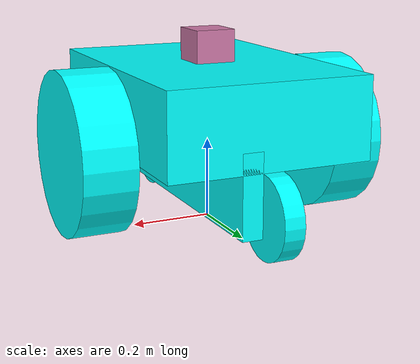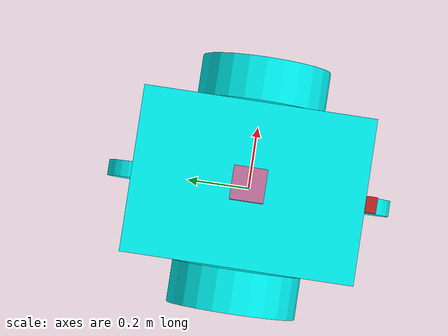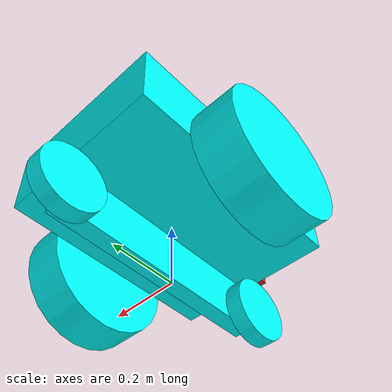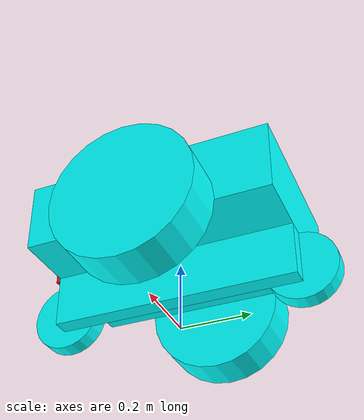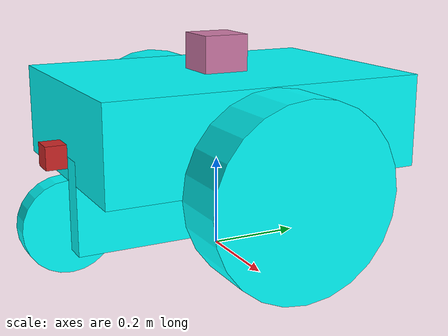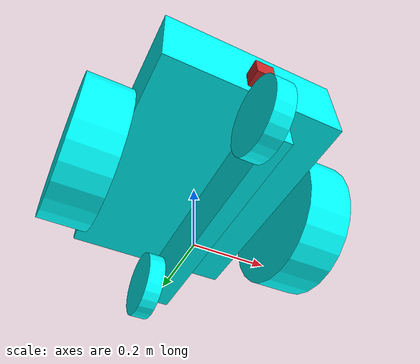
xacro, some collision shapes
<?xml version="1.0"?>
<robot name="jobrobot" xmlns:xacro="http://www.ros.org/wiki/xacro">
  <link name="base">
   <inertial>
     <origin xyz="0 0 0.3" rpy="0 0 0"/>
     <mass value="3"/>
     <inertia ixx="1"  ixy="0"  ixz="0" iyy="1" iyz="0" izz="1" />
   </inertial>

   <visual>
     <origin xyz="0 0 0.3" rpy="0 0 0" />
     <geometry>
       <box size="0.5 0.7 0.2" />
     </geometry>
     <material name="Cyan">
       <color rgba="0 1.0 1.0 1.0"/>
     </material>
   </visual>
   <visual name="supportright">
     <origin xyz="0.05 0 0.15" rpy="0 0 0" />
     <geometry>
       <box size="0.05 0.7 0.2" />
     </geometry>
     <material name="Cyan">
       <color rgba="0 1.0 1.0 1.0"/>
     </material>
   </visual>

   <collision>
     <origin xyz="0 0 0.3" rpy="0 0 0"/>
     <geometry>
       <box size="0.2 0.4 0.2"/>
     </geometry>
   </collision>
    <collision name="supportright">
     <origin xyz="0.05 0 0.15" rpy="0 0 0"/>
     <geometry>
       <box size="0.05 0.7 0.2"/>
     </geometry>
   </collision>

 </link>
 <link name="wheel_back">
   <inertial>
     <origin xyz="0 0 0" rpy="0 1.5707 0"/>
     <mass value="1"/>
     <inertia ixx="1"  ixy="0"  ixz="0" iyy="1" iyz="0" izz="1" />
   </inertial>

   <visual>
     <origin xyz="0 0 0" rpy="0 1.5707 0" />
     <geometry>
       <cylinder radius="0.1" length="0.05" />
     </geometry>
     <material name="Cyan">
       <color rgba="0 1.0 1.0 1.0"/>
     </material>
   </visual>

   <collision>
     <origin xyz="0 0 0" rpy="0 1.5707 0"/>
     <geometry>
       <cylinder radius="0.1" length="0.05" />
     </geometry>
   </collision>
 </link>
 <joint name="joint_wheel_back" type="continuous">
    <origin xyz="0 0.35 0.1" rpy="0 0 0"/>
    <parent link="base"/>
    <child link="wheel_back"/>

    <calibration rising="0.0"/>
    <dynamics damping="0.0" friction="1"/>
    <limit effort="30" velocity="1.0" lower="-2.2" upper="0.7" />
    <safety_controller k_velocity="10" k_position="15" soft_lower_limit="-2.0" soft_upper_limit="0.5" />
 </joint>

 <link name="wheel_front">
   <inertial>
     <origin xyz="0 0 0" rpy="0 1.5707 0"/>
     <mass value="1"/>
     <inertia ixx="1"  ixy="0"  ixz="0" iyy="1" iyz="0" izz="1" />
   </inertial>

   <visual>
     <origin xyz="0 0 0" rpy="0 1.5707 0" />
     <geometry>
       <cylinder radius="0.1" length="0.05" />
     </geometry>
     <material name="Cyan">
       <color rgba="0 1.0 1.0 1.0"/>
     </material>
   </visual>

   <collision>
     <origin xyz="0 0 0" rpy="0 1.5707 0"/>
     <geometry>
       <cylinder radius="0.1" length="0.05" />
     </geometry>
   </collision>
 </link>
 <joint name="joint_wheel_front" type="continuous">
    <origin xyz="0 -0.35 0.1" rpy="0 0 0"/>
    <parent link="base"/>
    <child link="wheel_front"/>

    <calibration rising="0.0"/>
    <dynamics damping="0.0" friction="1"/>
    <limit effort="30" velocity="1.0" lower="-2.2" upper="0.7" />
    <safety_controller k_velocity="10" k_position="15" soft_lower_limit="-2.0" soft_upper_limit="0.5" />
 </joint>

 <link name="wheel_right">
   <inertial>
     <origin xyz="0 0 0" rpy="0 1.5707 0"/>
     <mass value="1"/>
     <inertia ixx="1"  ixy="0"  ixz="0" iyy="1" iyz="0" izz="1" />
   </inertial>

   <visual>
     <origin xyz="0 0 0" rpy="0 1.5707 0" />
     <geometry>
       <cylinder radius="0.2" length="0.13" />
     </geometry>
     <material name="Cyan">
       <color rgba="0 1.0 1.0 1.0"/>
     </material>
   </visual>

   <collision>
     <origin xyz="0 0 0" rpy="0 1.5707 0"/>
     <geometry>
       <cylinder radius="0.2" length="0.13" />
     </geometry>
   </collision>
 </link>
 <joint name="joint_wheel_right" type="continuous">
    <origin xyz="0.32 0 0.2" rpy="0 0 0"/>
    <parent link="base"/>
    <child link="wheel_right"/>

    <calibration rising="0.0"/>
    <dynamics damping="0.0" friction="1"/>

 </joint>
 <link name="wheel_left">
   <inertial>
     <origin xyz="0 0 0" rpy="0 1.5707 0"/>
     <mass value="1"/>
     <inertia ixx="1"  ixy="0"  ixz="0" iyy="1" iyz="0" izz="1" />
   </inertial>

   <visual>
     <origin xyz="0 0 0" rpy="0 1.5707 0" />
     <geometry>
       <cylinder radius="0.2" length="0.13" />
     </geometry>
     <material name="Cyan">
       <color rgba="0 1.0 1.0 1.0"/>
     </material>
   </visual>

   <collision>
     <origin xyz="0 0 0" rpy="0 1.5707 0"/>
     <geometry>
       <cylinder radius="0.2" length="0.13" />
     </geometry>
   </collision>
 </link>
 <joint name="joint_wheel_left" type="continuous">
    <origin xyz="-0.32 0 0.2" rpy="0 0 0"/>
    <parent link="base"/>
    <child link="wheel_left"/>

    <calibration rising="0.0"/>
    <dynamics damping="0.0" friction="1"/>

 </joint>

  <joint name="camera_joint" type="fixed">
    <axis xyz="0 0 0" />
    <origin xyz="0 -0.37 0.25" rpy="0 0 -1.5707"/>
    <parent link="base"/>
    <child link="camera_link"/>
  </joint>

  <!-- Camera -->
  <link name="camera_link">
    <collision>
      <origin xyz="0 0 0" rpy="0 0 0"/>
      <geometry>
    <box size="0.05 0.05 0.05"/>
      </geometry>
    </collision>

    <visual>
      <origin xyz="0 0 0" rpy="0 0 0"/>
      <geometry>
    <box size="0.05 0.05 0.05"/>
      </geometry>
      <material name="red"/>
    </visual>

    <inertial>
      <mass value="1e-5" />
      <origin xyz="0 0 0" rpy="0 0 0"/>
      <inertia ixx="1e-6" ixy="0" ixz="0" iyy="1e-6" iyz="0" izz="1e-6" />
    </inertial>
  </link>
  <!-- camera -->
  <gazebo reference="camera_link">
    <sensor type="camera" name="camera1">
      <update_rate>30.0</update_rate>
      <camera name="head">

        <image>
          <width>1600</width>
          <height>800</height>
          <format>R8G8B8</format>
        </image>
        <clip>
          <near>0.2</near>
          <far>500</far>
        </clip>
        <noise>
          <type>gaussian</type>
          <!-- Noise is sampled independently per pixel on each frame.
               That pixel's noise value is added to each of its color
               channels, which at that point lie in the range [0,1]. -->
          <mean>0.0</mean>
          <stddev>0.007</stddev>
        </noise>
      </camera>
      <plugin name="camera_controller" filename="libgazebo_ros_camera.so">
        <alwaysOn>true</alwaysOn>
        <updateRate>0.0</updateRate>
        <cameraName>rrbot/camera1</cameraName>
        <imageTopicName>image_raw</imageTopicName>
        <cameraInfoTopicName>camera_info</cameraInfoTopicName>
        <frameName>camera_link</frameName>
        <hackBaseline>0.07</hackBaseline>
        <distortionK1>0.0</distortionK1>
        <distortionK2>0.0</distortionK2>
        <distortionK3>0.0</distortionK3>
        <distortionT1>0.0</distortionT1>
        <distortionT2>0.0</distortionT2>
      </plugin>
    </sensor>
  </gazebo>

  <!-- hokuyo -->
  <gazebo reference="hokuyo_link">
    <sensor type="ray" name="head_hokuyo_sensor">
      <pose>0 0 0 0 0 0</pose>
      <visualize>true</visualize>
      <update_rate>40</update_rate>
      <ray>
        <scan>
          <horizontal>
            <samples>720</samples>
            <resolution>1</resolution>
            <min_angle>-1.570796</min_angle>
            <max_angle>1.570796</max_angle>
          </horizontal>
        </scan>
        <range>
          <min>0.10</min>
          <max>30.0</max>
          <resolution>0.01</resolution>
        </range>
        <noise>
          <type>gaussian</type>
          <mean>0.0</mean>
          <stddev>0.01</stddev>
        </noise>
      </ray>
      <plugin name="gazebo_ros_head_hokuyo_controller" filename="libgazebo_ros_laser.so">
        <topicName>/rrbot/laser/scan</topicName>
        <frameName>hokuyo_link</frameName>
      </plugin>
    </sensor>
  </gazebo>

  <joint name="hokuyo_joint" type="fixed">
    <axis xyz="0 1 0" />
    <origin xyz="0 0 0.43" rpy="0 0 -1.5707"/>
    <parent link="base"/>
    <child link="hokuyo_link"/>
  </joint>

  <!-- Hokuyo Laser -->
  <link name="hokuyo_link">
    <collision>
      <origin xyz="0 0 0" rpy="0 0 0"/>
      <geometry>
    <box size="0.1 0.1 0.1"/>
      </geometry>
    </collision>

    <visual>
      <origin xyz="0 0 0" rpy="0 0 0"/>
      <geometry>
        <mesh filename="package://robot_discription/meshes/hokuyo.dae"/>
      </geometry>
    </visual>

    <inertial>
      <mass value="1e-5" />
      <origin xyz="0 0 0" rpy="0 0 0"/>
      <inertia ixx="1e-6" ixy="0" ixz="0" iyy="1e-6" iyz="0" izz="1e-6" />
    </inertial>
  </link>

  <gazebo>
  <plugin name="differential_drive_controller" filename="libgazebo_ros_diff_drive.so">

    <!-- Plugin update rate in Hz -->
    <updateRate>100</updateRate>

    <!-- Name of left joint, defaults to `left_joint` -->
    <leftJoint>joint_wheel_left</leftJoint>

    <!-- Name of right joint, defaults to `right_joint` -->
    <rightJoint>joint_wheel_right</rightJoint>

    <!-- The distance from the center of one wheel to the other, in meters, defaults to 0.34 m -->
    <wheelSeparation>0.6</wheelSeparation>

    <!-- Diameter of the wheels, in meters, defaults to 0.15 m -->
    <wheelDiameter>0.25</wheelDiameter>

    <!-- Wheel acceleration, in rad/s^2, defaults to 0.0 rad/s^2 -->
    <wheelAcceleration>0.3</wheelAcceleration>

    <!-- Maximum torque which the wheels can produce, in Nm, defaults to 5 Nm -->
    <wheelTorque>10</wheelTorque>

    <!-- Topic to receive geometry_msgs/Twist message commands, defaults to `cmd_vel` -->
    <commandTopic>cmd_vel</commandTopic>

    <!-- Topic to publish nav_msgs/Odometry messages, defaults to `odom` -->
    <odometryTopic>odom</odometryTopic>

    <!-- Odometry frame, defaults to `odom` -->
    <odometryFrame>odom</odometryFrame>

    <!-- Robot frame to calculate odometry from, defaults to `base_footprint` -->
    <robotBaseFrame>base</robotBaseFrame>

    <!-- Odometry source, 0 for ENCODER, 1 for WORLD, defaults to WORLD -->
    <odometrySource>1</odometrySource>

    <!-- Set to true to publish transforms for the wheel links, defaults to false -->
    <publishWheelTF>false</publishWheelTF>

    <!-- Set to true to publish transforms for the odometry, defaults to true -->
    <publishOdom>true</publishOdom>

    <!-- Set to true to publish sensor_msgs/JointState on /joint_states for the wheel joints, defaults to false -->
    <publishWheelJointState>true</publishWheelJointState>

    <!-- Set to true to swap right and left wheels, defaults to true -->
    <legacyMode>false</legacyMode>
  </plugin>
</gazebo>
</robot>
